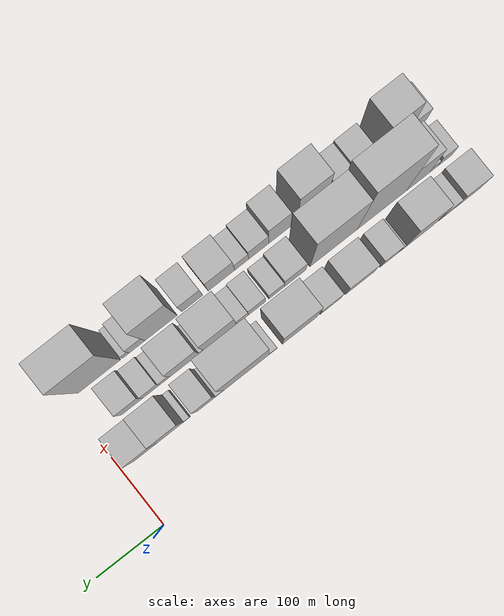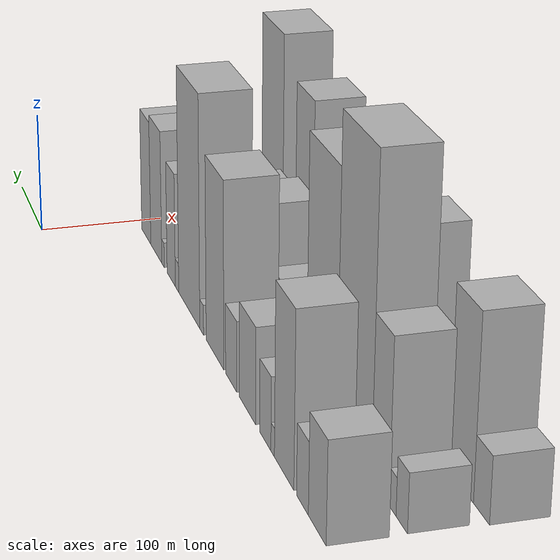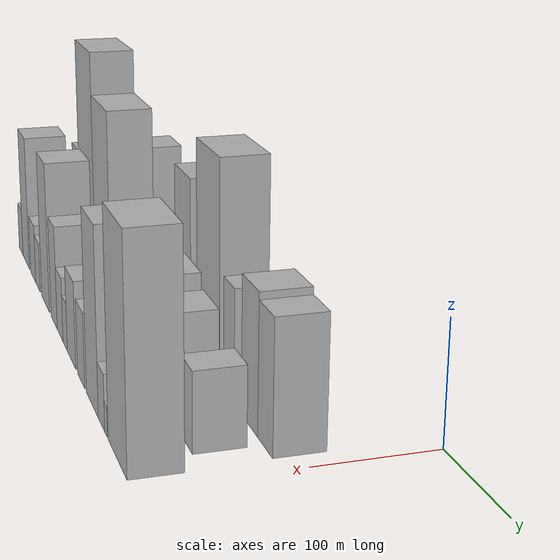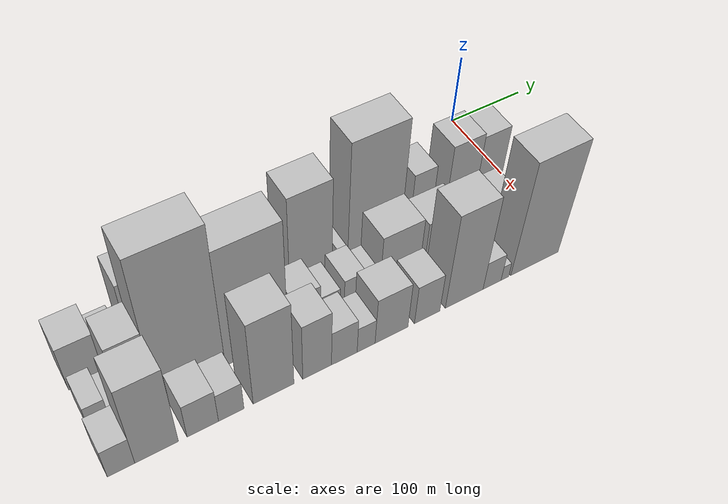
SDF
<sdf version="1.6">
 <world name="default">
  <model name="building_1">
   <static>1</static>
   <pose>100.0000 -521.2292 0 0.000000 0.000000 0.000000</pose>
   <link name="link">
    <pose>0 0 36.00 0 0 0</pose>
    <collision name="collision"><geometry><box><size>40.0000 37.5416 72.0000</size></box></geometry></collision>
    <visual name="visual">
     <cast_shadows>0</cast_shadows>
     <geometry><box><size>40.0000 37.5416 72.0000</size></box></geometry>
     <material>
      <script>
       <uri>model://HANNAS_wall/materials/scripts</uri>
       <uri>model://HANNAS_wall/materials/textures</uri>
       <name>vrc/HANNAS_wall</name>
      </script>
     </material>
    </visual>
   </link>
  </model>
  <model name="building_2">
   <static>1</static>
   <pose>100.0000 -489.3952 0 0.000000 0.000000 0.000000</pose>
   <link name="link">
    <pose>0 0 25.50 0 0 0</pose>
    <collision name="collision"><geometry><box><size>40.0000 26.1263 51.0000</size></box></geometry></collision>
    <visual name="visual">
     <cast_shadows>0</cast_shadows>
     <geometry><box><size>40.0000 26.1263 51.0000</size></box></geometry>
     <material>
      <script>
       <uri>model://HANNAS_wall/materials/scripts</uri>
       <uri>model://HANNAS_wall/materials/textures</uri>
       <name>vrc/HANNAS_wall</name>
      </script>
     </material>
    </visual>
   </link>
  </model>
  <model name="building_3">
   <static>1</static>
   <pose>100.0000 -447.6443 0 0.000000 0.000000 0.000000</pose>
   <link name="link">
    <pose>0 0 63.00 0 0 0</pose>
    <collision name="collision"><geometry><box><size>40.0000 45.3757 126.0000</size></box></geometry></collision>
    <visual name="visual">
     <cast_shadows>0</cast_shadows>
     <geometry><box><size>40.0000 45.3757 126.0000</size></box></geometry>
     <material>
      <script>
       <uri>model://HANNAS_wall/materials/scripts</uri>
       <uri>model://HANNAS_wall/materials/textures</uri>
       <name>vrc/HANNAS_wall</name>
      </script>
     </material>
    </visual>
   </link>
  </model>
  <model name="building_4">
   <static>1</static>
   <pose>100.0000 -420.6477 0 0.000000 0.000000 0.000000</pose>
   <link name="link">
    <pose>0 0 10.50 0 0 0</pose>
    <collision name="collision"><geometry><box><size>40.0000 8.6174 21.0000</size></box></geometry></collision>
    <visual name="visual">
     <cast_shadows>0</cast_shadows>
     <geometry><box><size>40.0000 8.6174 21.0000</size></box></geometry>
     <material>
      <script>
       <uri>model://HANNAS_wall/materials/scripts</uri>
       <uri>model://HANNAS_wall/materials/textures</uri>
       <name>vrc/HANNAS_wall</name>
      </script>
     </material>
    </visual>
   </link>
  </model>
  <model name="building_5">
   <static>1</static>
   <pose>100.0000 -402.2791 0 0.000000 0.000000 0.000000</pose>
   <link name="link">
    <pose>0 0 27.00 0 0 0</pose>
    <collision name="collision"><geometry><box><size>40.0000 28.1198 54.0000</size></box></geometry></collision>
    <visual name="visual">
     <cast_shadows>0</cast_shadows>
     <geometry><box><size>40.0000 28.1198 54.0000</size></box></geometry>
     <material>
      <script>
       <uri>model://HANNAS_wall/materials/scripts</uri>
       <uri>model://HANNAS_wall/materials/textures</uri>
       <name>vrc/HANNAS_wall</name>
      </script>
     </material>
    </visual>
   </link>
  </model>
  <model name="building_6">
   <static>1</static>
   <pose>100.0000 -356.8882 0 0.000000 0.000000 0.000000</pose>
   <link name="link">
    <pose>0 0 36.00 0 0 0</pose>
    <collision name="collision"><geometry><box><size>40.0000 42.6621 72.0000</size></box></geometry></collision>
    <visual name="visual">
     <cast_shadows>0</cast_shadows>
     <geometry><box><size>40.0000 42.6621 72.0000</size></box></geometry>
     <material>
      <script>
       <uri>model://HANNAS_wall/materials/scripts</uri>
       <uri>model://HANNAS_wall/materials/textures</uri>
       <name>vrc/HANNAS_wall</name>
      </script>
     </material>
    </visual>
   </link>
  </model>
  <model name="building_7">
   <static>1</static>
   <pose>100.0000 -312.8669 0 0.000000 0.000000 0.000000</pose>
   <link name="link">
    <pose>0 0 27.00 0 0 0</pose>
    <collision name="collision"><geometry><box><size>40.0000 31.3804 54.0000</size></box></geometry></collision>
    <visual name="visual">
     <cast_shadows>0</cast_shadows>
     <geometry><box><size>40.0000 31.3804 54.0000</size></box></geometry>
     <material>
      <script>
       <uri>model://HANNAS_wall/materials/scripts</uri>
       <uri>model://HANNAS_wall/materials/textures</uri>
       <name>vrc/HANNAS_wall</name>
      </script>
     </material>
    </visual>
   </link>
  </model>
  <model name="building_8">
   <static>1</static>
   <pose>100.0000 -266.2269 0 0.000000 0.000000 0.000000</pose>
   <link name="link">
    <pose>0 0 72.00 0 0 0</pose>
    <collision name="collision"><geometry><box><size>40.0000 51.8997 144.0000</size></box></geometry></collision>
    <visual name="visual">
     <cast_shadows>0</cast_shadows>
     <geometry><box><size>40.0000 51.8997 144.0000</size></box></geometry>
     <material>
      <script>
       <uri>model://HANNAS_wall/materials/scripts</uri>
       <uri>model://HANNAS_wall/materials/textures</uri>
       <name>vrc/HANNAS_wall</name>
      </script>
     </material>
    </visual>
   </link>
  </model>
  <model name="building_9">
   <static>1</static>
   <pose>100.0000 -226.4892 0 0.000000 0.000000 0.000000</pose>
   <link name="link">
    <pose>0 0 12.00 0 0 0</pose>
    <collision name="collision"><geometry><box><size>40.0000 11.5759 24.0000</size></box></geometry></collision>
    <visual name="visual">
     <cast_shadows>0</cast_shadows>
     <geometry><box><size>40.0000 11.5759 24.0000</size></box></geometry>
     <material>
      <script>
       <uri>model://HANNAS_wall/materials/scripts</uri>
       <uri>model://HANNAS_wall/materials/textures</uri>
       <name>vrc/HANNAS_wall</name>
      </script>
     </material>
    </visual>
   </link>
  </model>
  <model name="building_10">
   <static>1</static>
   <pose>100.0000 -186.7829 0 0.000000 0.000000 0.000000</pose>
   <link name="link">
    <pose>0 0 91.50 0 0 0</pose>
    <collision name="collision"><geometry><box><size>40.0000 67.8367 183.0000</size></box></geometry></collision>
    <visual name="visual">
     <cast_shadows>0</cast_shadows>
     <geometry><box><size>40.0000 67.8367 183.0000</size></box></geometry>
     <material>
      <script>
       <uri>model://HANNAS_wall/materials/scripts</uri>
       <uri>model://HANNAS_wall/materials/textures</uri>
       <name>vrc/HANNAS_wall</name>
      </script>
     </material>
    </visual>
   </link>
  </model>
  <model name="building_11">
   <static>1</static>
   <pose>100.0000 -147.0501 0 0.000000 0.000000 0.000000</pose>
   <link name="link">
    <pose>0 0 12.00 0 0 0</pose>
    <collision name="collision"><geometry><box><size>40.0000 11.6288 24.0000</size></box></geometry></collision>
    <visual name="visual">
     <cast_shadows>0</cast_shadows>
     <geometry><box><size>40.0000 11.6288 24.0000</size></box></geometry>
     <material>
      <script>
       <uri>model://HANNAS_wall/materials/scripts</uri>
       <uri>model://HANNAS_wall/materials/textures</uri>
       <name>vrc/HANNAS_wall</name>
      </script>
     </material>
    </visual>
   </link>
  </model>
  <model name="building_12">
   <static>1</static>
   <pose>100.0000 -126.9637 0 0.000000 0.000000 0.000000</pose>
   <link name="link">
    <pose>0 0 46.50 0 0 0</pose>
    <collision name="collision"><geometry><box><size>40.0000 28.5441 93.0000</size></box></geometry></collision>
    <visual name="visual">
     <cast_shadows>0</cast_shadows>
     <geometry><box><size>40.0000 28.5441 93.0000</size></box></geometry>
     <material>
      <script>
       <uri>model://HANNAS_wall/materials/scripts</uri>
       <uri>model://HANNAS_wall/materials/textures</uri>
       <name>vrc/HANNAS_wall</name>
      </script>
     </material>
    </visual>
   </link>
  </model>
  <model name="building_13">
   <static>1</static>
   <pose>100.0000 -98.3616 0 0.000000 0.000000 0.000000</pose>
   <link name="link">
    <pose>0 0 10.50 0 0 0</pose>
    <collision name="collision"><geometry><box><size>40.0000 8.6600 21.0000</size></box></geometry></collision>
    <visual name="visual">
     <cast_shadows>0</cast_shadows>
     <geometry><box><size>40.0000 8.6600 21.0000</size></box></geometry>
     <material>
      <script>
       <uri>model://HANNAS_wall/materials/scripts</uri>
       <uri>model://HANNAS_wall/materials/textures</uri>
       <name>vrc/HANNAS_wall</name>
      </script>
     </material>
    </visual>
   </link>
  </model>
  <model name="building_14">
   <static>1</static>
   <pose>100.0000 -73.8813 0 0.000000 0.000000 0.000000</pose>
   <link name="link">
    <pose>0 0 55.50 0 0 0</pose>
    <collision name="collision"><geometry><box><size>40.0000 40.3006 111.0000</size></box></geometry></collision>
    <visual name="visual">
     <cast_shadows>0</cast_shadows>
     <geometry><box><size>40.0000 40.3006 111.0000</size></box></geometry>
     <material>
      <script>
       <uri>model://HANNAS_wall/materials/scripts</uri>
       <uri>model://HANNAS_wall/materials/textures</uri>
       <name>vrc/HANNAS_wall</name>
      </script>
     </material>
    </visual>
   </link>
  </model>
  <model name="building_15">
   <static>1</static>
   <pose>100.0000 -36.5058 0 0.000000 0.000000 0.000000</pose>
   <link name="link">
    <pose>0 0 52.50 0 0 0</pose>
    <collision name="collision"><geometry><box><size>40.0000 34.4504 105.0000</size></box></geometry></collision>
    <visual name="visual">
     <cast_shadows>0</cast_shadows>
     <geometry><box><size>40.0000 34.4504 105.0000</size></box></geometry>
     <material>
      <script>
       <uri>model://HANNAS_wall/materials/scripts</uri>
       <uri>model://HANNAS_wall/materials/textures</uri>
       <name>vrc/HANNAS_wall</name>
      </script>
     </material>
    </visual>
   </link>
  </model>
  <model name="building_31">
   <static>1</static>
   <pose>152.0000 -528.1778 0 0.000000 0.000000 0.000000</pose>
   <link name="link">
    <pose>0 0 21.00 0 0 0</pose>
    <collision name="collision"><geometry><box><size>40.0000 21.6443 42.0000</size></box></geometry></collision>
    <visual name="visual">
     <cast_shadows>0</cast_shadows>
     <geometry><box><size>40.0000 21.6443 42.0000</size></box></geometry>
     <material>
      <script>
       <uri>model://HANNAS_wall/materials/scripts</uri>
       <uri>model://HANNAS_wall/materials/textures</uri>
       <name>vrc/HANNAS_wall</name>
      </script>
     </material>
    </visual>
   </link>
  </model>
  <model name="building_32">
   <static>1</static>
   <pose>152.0000 -510.8541 0 0.000000 0.000000 0.000000</pose>
   <link name="link">
    <pose>0 0 13.50 0 0 0</pose>
    <collision name="collision"><geometry><box><size>40.0000 13.0031 27.0000</size></box></geometry></collision>
    <visual name="visual">
     <cast_shadows>0</cast_shadows>
     <geometry><box><size>40.0000 13.0031 27.0000</size></box></geometry>
     <material>
      <script>
       <uri>model://HANNAS_wall/materials/scripts</uri>
       <uri>model://HANNAS_wall/materials/textures</uri>
       <name>vrc/HANNAS_wall</name>
      </script>
     </material>
    </visual>
   </link>
  </model>
  <model name="building_33">
   <static>1</static>
   <pose>152.0000 -486.6505 0 0.000000 0.000000 0.000000</pose>
   <link name="link">
    <pose>0 0 58.50 0 0 0</pose>
    <collision name="collision"><geometry><box><size>40.0000 35.4040 117.0000</size></box></geometry></collision>
    <visual name="visual">
     <cast_shadows>0</cast_shadows>
     <geometry><box><size>40.0000 35.4040 117.0000</size></box></geometry>
     <material>
      <script>
       <uri>model://HANNAS_wall/materials/scripts</uri>
       <uri>model://HANNAS_wall/materials/textures</uri>
       <name>vrc/HANNAS_wall</name>
      </script>
     </material>
    </visual>
   </link>
  </model>
  <model name="building_34">
   <static>1</static>
   <pose>152.0000 -431.5255 0 0.000000 0.000000 0.000000</pose>
   <link name="link">
    <pose>0 0 112.50 0 0 0</pose>
    <collision name="collision"><geometry><box><size>40.0000 74.8459 225.0000</size></box></geometry></collision>
    <visual name="visual">
     <cast_shadows>0</cast_shadows>
     <geometry><box><size>40.0000 74.8459 225.0000</size></box></geometry>
     <material>
      <script>
       <uri>model://HANNAS_wall/materials/scripts</uri>
       <uri>model://HANNAS_wall/materials/textures</uri>
       <name>vrc/HANNAS_wall</name>
      </script>
     </material>
    </visual>
   </link>
  </model>
  <model name="building_35">
   <static>1</static>
   <pose>152.0000 -358.5160 0 0.000000 0.000000 0.000000</pose>
   <link name="link">
    <pose>0 0 93.00 0 0 0</pose>
    <collision name="collision"><geometry><box><size>40.0000 71.1732 186.0000</size></box></geometry></collision>
    <visual name="visual">
     <cast_shadows>0</cast_shadows>
     <geometry><box><size>40.0000 71.1732 186.0000</size></box></geometry>
     <material>
      <script>
       <uri>model://HANNAS_wall/materials/scripts</uri>
       <uri>model://HANNAS_wall/materials/textures</uri>
       <name>vrc/HANNAS_wall</name>
      </script>
     </material>
    </visual>
   </link>
  </model>
  <model name="building_36">
   <static>1</static>
   <pose>152.0000 -300.5440 0 0.000000 0.000000 0.000000</pose>
   <link name="link">
    <pose>0 0 30.00 0 0 0</pose>
    <collision name="collision"><geometry><box><size>40.0000 32.7709 60.0000</size></box></geometry></collision>
    <visual name="visual">
     <cast_shadows>0</cast_shadows>
     <geometry><box><size>40.0000 32.7709 60.0000</size></box></geometry>
     <material>
      <script>
       <uri>model://HANNAS_wall/materials/scripts</uri>
       <uri>model://HANNAS_wall/materials/textures</uri>
       <name>vrc/HANNAS_wall</name>
      </script>
     </material>
    </visual>
   </link>
  </model>
  <model name="building_37">
   <static>1</static>
   <pose>152.0000 -272.6185 0 0.000000 0.000000 0.000000</pose>
   <link name="link">
    <pose>0 0 19.50 0 0 0</pose>
    <collision name="collision"><geometry><box><size>40.0000 23.0800 39.0000</size></box></geometry></collision>
    <visual name="visual">
     <cast_shadows>0</cast_shadows>
     <geometry><box><size>40.0000 23.0800 39.0000</size></box></geometry>
     <material>
      <script>
       <uri>model://HANNAS_wall/materials/scripts</uri>
       <uri>model://HANNAS_wall/materials/textures</uri>
       <name>vrc/HANNAS_wall</name>
      </script>
     </material>
    </visual>
   </link>
  </model>
  <model name="building_38">
   <static>1</static>
   <pose>152.0000 -243.2414 0 0.000000 0.000000 0.000000</pose>
   <link name="link">
    <pose>0 0 24.00 0 0 0</pose>
    <collision name="collision"><geometry><box><size>40.0000 25.6743 48.0000</size></box></geometry></collision>
    <visual name="visual">
     <cast_shadows>0</cast_shadows>
     <geometry><box><size>40.0000 25.6743 48.0000</size></box></geometry>
     <material>
      <script>
       <uri>model://HANNAS_wall/materials/scripts</uri>
       <uri>model://HANNAS_wall/materials/textures</uri>
       <name>vrc/HANNAS_wall</name>
      </script>
     </material>
    </visual>
   </link>
  </model>
  <model name="building_39">
   <static>1</static>
   <pose>152.0000 -221.3581 0 0.000000 0.000000 0.000000</pose>
   <link name="link">
    <pose>0 0 18.00 0 0 0</pose>
    <collision name="collision"><geometry><box><size>40.0000 18.0922 36.0000</size></box></geometry></collision>
    <visual name="visual">
     <cast_shadows>0</cast_shadows>
     <geometry><box><size>40.0000 18.0922 36.0000</size></box></geometry>
     <material>
      <script>
       <uri>model://HANNAS_wall/materials/scripts</uri>
       <uri>model://HANNAS_wall/materials/textures</uri>
       <name>vrc/HANNAS_wall</name>
      </script>
     </material>
    </visual>
   </link>
  </model>
  <model name="building_40">
   <static>1</static>
   <pose>152.0000 -187.5275 0 0.000000 0.000000 0.000000</pose>
   <link name="link">
    <pose>0 0 45.00 0 0 0</pose>
    <collision name="collision"><geometry><box><size>40.0000 49.5690 90.0000</size></box></geometry></collision>
    <visual name="visual">
     <cast_shadows>0</cast_shadows>
     <geometry><box><size>40.0000 49.5690 90.0000</size></box></geometry>
     <material>
      <script>
       <uri>model://HANNAS_wall/materials/scripts</uri>
       <uri>model://HANNAS_wall/materials/textures</uri>
       <name>vrc/HANNAS_wall</name>
      </script>
     </material>
    </visual>
   </link>
  </model>
  <model name="building_41">
   <static>1</static>
   <pose>152.0000 -159.6810 0 0.000000 0.000000 0.000000</pose>
   <link name="link">
    <pose>0 0 7.50 0 0 0</pose>
    <collision name="collision"><geometry><box><size>40.0000 6.1241 15.0000</size></box></geometry></collision>
    <visual name="visual">
     <cast_shadows>0</cast_shadows>
     <geometry><box><size>40.0000 6.1241 15.0000</size></box></geometry>
     <material>
      <script>
       <uri>model://HANNAS_wall/materials/scripts</uri>
       <uri>model://HANNAS_wall/materials/textures</uri>
       <name>vrc/HANNAS_wall</name>
      </script>
     </material>
    </visual>
   </link>
  </model>
  <model name="building_42">
   <static>1</static>
   <pose>152.0000 -134.6582 0 0.000000 0.000000 0.000000</pose>
   <link name="link">
    <pose>0 0 39.00 0 0 0</pose>
    <collision name="collision"><geometry><box><size>40.0000 43.9215 78.0000</size></box></geometry></collision>
    <visual name="visual">
     <cast_shadows>0</cast_shadows>
     <geometry><box><size>40.0000 43.9215 78.0000</size></box></geometry>
     <material>
      <script>
       <uri>model://HANNAS_wall/materials/scripts</uri>
       <uri>model://HANNAS_wall/materials/textures</uri>
       <name>vrc/HANNAS_wall</name>
      </script>
     </material>
    </visual>
   </link>
  </model>
  <model name="building_43">
   <static>1</static>
   <pose>152.0000 -105.0419 0 0.000000 0.000000 0.000000</pose>
   <link name="link">
    <pose>0 0 15.00 0 0 0</pose>
    <collision name="collision"><geometry><box><size>40.0000 15.3110 30.0000</size></box></geometry></collision>
    <visual name="visual">
     <cast_shadows>0</cast_shadows>
     <geometry><box><size>40.0000 15.3110 30.0000</size></box></geometry>
     <material>
      <script>
       <uri>model://HANNAS_wall/materials/scripts</uri>
       <uri>model://HANNAS_wall/materials/textures</uri>
       <name>vrc/HANNAS_wall</name>
      </script>
     </material>
    </visual>
   </link>
  </model>
  <model name="building_44">
   <static>1</static>
   <pose>152.0000 -84.9312 0 0.000000 0.000000 0.000000</pose>
   <link name="link">
    <pose>0 0 21.00 0 0 0</pose>
    <collision name="collision"><geometry><box><size>40.0000 24.9103 42.0000</size></box></geometry></collision>
    <visual name="visual">
     <cast_shadows>0</cast_shadows>
     <geometry><box><size>40.0000 24.9103 42.0000</size></box></geometry>
     <material>
      <script>
       <uri>model://HANNAS_wall/materials/scripts</uri>
       <uri>model://HANNAS_wall/materials/textures</uri>
       <name>vrc/HANNAS_wall</name>
      </script>
     </material>
    </visual>
   </link>
  </model>
  <model name="building_45">
   <static>1</static>
   <pose>152.0000 -56.4137 0 0.000000 0.000000 0.000000</pose>
   <link name="link">
    <pose>0 0 31.50 0 0 0</pose>
    <collision name="collision"><geometry><box><size>40.0000 32.1248 63.0000</size></box></geometry></collision>
    <visual name="visual">
     <cast_shadows>0</cast_shadows>
     <geometry><box><size>40.0000 32.1248 63.0000</size></box></geometry>
     <material>
      <script>
       <uri>model://HANNAS_wall/materials/scripts</uri>
       <uri>model://HANNAS_wall/materials/textures</uri>
       <name>vrc/HANNAS_wall</name>
      </script>
     </material>
    </visual>
   </link>
  </model>
  <model name="building_59">
   <static>1</static>
   <pose>204.0000 -528.1693 0 0.000000 0.000000 0.000000</pose>
   <link name="link">
    <pose>0 0 24.00 0 0 0</pose>
    <collision name="collision"><geometry><box><size>40.0000 27.6614 48.0000</size></box></geometry></collision>
    <visual name="visual">
     <cast_shadows>0</cast_shadows>
     <geometry><box><size>40.0000 27.6614 48.0000</size></box></geometry>
     <material>
      <script>
       <uri>model://HANNAS_wall/materials/scripts</uri>
       <uri>model://HANNAS_wall/materials/textures</uri>
       <name>vrc/HANNAS_wall</name>
      </script>
     </material>
    </visual>
   </link>
  </model>
  <model name="building_60">
   <static>1</static>
   <pose>204.0000 -492.0183 0 0.000000 0.000000 0.000000</pose>
   <link name="link">
    <pose>0 0 66.00 0 0 0</pose>
    <collision name="collision"><geometry><box><size>40.0000 44.6406 132.0000</size></box></geometry></collision>
    <visual name="visual">
     <cast_shadows>0</cast_shadows>
     <geometry><box><size>40.0000 44.6406 132.0000</size></box></geometry>
     <material>
      <script>
       <uri>model://HANNAS_wall/materials/scripts</uri>
       <uri>model://HANNAS_wall/materials/textures</uri>
       <name>vrc/HANNAS_wall</name>
      </script>
     </material>
    </visual>
   </link>
  </model>
  <model name="building_61">
   <static>1</static>
   <pose>204.0000 -444.0405 0 0.000000 0.000000 0.000000</pose>
   <link name="link">
    <pose>0 0 28.50 0 0 0</pose>
    <collision name="collision"><geometry><box><size>40.0000 33.3150 57.0000</size></box></geometry></collision>
    <visual name="visual">
     <cast_shadows>0</cast_shadows>
     <geometry><box><size>40.0000 33.3150 57.0000</size></box></geometry>
     <material>
      <script>
       <uri>model://HANNAS_wall/materials/scripts</uri>
       <uri>model://HANNAS_wall/materials/textures</uri>
       <name>vrc/HANNAS_wall</name>
      </script>
     </material>
    </visual>
   </link>
  </model>
  <model name="building_62">
   <static>1</static>
   <pose>204.0000 -413.6468 0 0.000000 0.000000 0.000000</pose>
   <link name="link">
    <pose>0 0 24.00 0 0 0</pose>
    <collision name="collision"><geometry><box><size>40.0000 27.4723 48.0000</size></box></geometry></collision>
    <visual name="visual">
     <cast_shadows>0</cast_shadows>
     <geometry><box><size>40.0000 27.4723 48.0000</size></box></geometry>
     <material>
      <script>
       <uri>model://HANNAS_wall/materials/scripts</uri>
       <uri>model://HANNAS_wall/materials/textures</uri>
       <name>vrc/HANNAS_wall</name>
      </script>
     </material>
    </visual>
   </link>
  </model>
  <model name="building_63">
   <static>1</static>
   <pose>204.0000 -367.2348 0 0.000000 0.000000 0.000000</pose>
   <link name="link">
    <pose>0 0 69.00 0 0 0</pose>
    <collision name="collision"><geometry><box><size>40.0000 45.3516 138.0000</size></box></geometry></collision>
    <visual name="visual">
     <cast_shadows>0</cast_shadows>
     <geometry><box><size>40.0000 45.3516 138.0000</size></box></geometry>
     <material>
      <script>
       <uri>model://HANNAS_wall/materials/scripts</uri>
       <uri>model://HANNAS_wall/materials/textures</uri>
       <name>vrc/HANNAS_wall</name>
      </script>
     </material>
    </visual>
   </link>
  </model>
  <model name="building_64">
   <static>1</static>
   <pose>204.0000 -318.1275 0 0.000000 0.000000 0.000000</pose>
   <link name="link">
    <pose>0 0 46.50 0 0 0</pose>
    <collision name="collision"><geometry><box><size>40.0000 32.8631 93.0000</size></box></geometry></collision>
    <visual name="visual">
     <cast_shadows>0</cast_shadows>
     <geometry><box><size>40.0000 32.8631 93.0000</size></box></geometry>
     <material>
      <script>
       <uri>model://HANNAS_wall/materials/scripts</uri>
       <uri>model://HANNAS_wall/materials/textures</uri>
       <name>vrc/HANNAS_wall</name>
      </script>
     </material>
    </visual>
   </link>
  </model>
  <model name="building_65">
   <static>1</static>
   <pose>204.0000 -286.6837 0 0.000000 0.000000 0.000000</pose>
   <link name="link">
    <pose>0 0 28.50 0 0 0</pose>
    <collision name="collision"><geometry><box><size>40.0000 30.0245 57.0000</size></box></geometry></collision>
    <visual name="visual">
     <cast_shadows>0</cast_shadows>
     <geometry><box><size>40.0000 30.0245 57.0000</size></box></geometry>
     <material>
      <script>
       <uri>model://HANNAS_wall/materials/scripts</uri>
       <uri>model://HANNAS_wall/materials/textures</uri>
       <name>vrc/HANNAS_wall</name>
      </script>
     </material>
    </visual>
   </link>
  </model>
  <model name="building_66">
   <static>1</static>
   <pose>204.0000 -261.0341 0 0.000000 0.000000 0.000000</pose>
   <link name="link">
    <pose>0 0 21.00 0 0 0</pose>
    <collision name="collision"><geometry><box><size>40.0000 21.2747 42.0000</size></box></geometry></collision>
    <visual name="visual">
     <cast_shadows>0</cast_shadows>
     <geometry><box><size>40.0000 21.2747 42.0000</size></box></geometry>
     <material>
      <script>
       <uri>model://HANNAS_wall/materials/scripts</uri>
       <uri>model://HANNAS_wall/materials/textures</uri>
       <name>vrc/HANNAS_wall</name>
      </script>
     </material>
    </visual>
   </link>
  </model>
  <model name="building_67">
   <static>1</static>
   <pose>204.0000 -230.4503 0 0.000000 0.000000 0.000000</pose>
   <link name="link">
    <pose>0 0 37.50 0 0 0</pose>
    <collision name="collision"><geometry><box><size>40.0000 39.8929 75.0000</size></box></geometry></collision>
    <visual name="visual">
     <cast_shadows>0</cast_shadows>
     <geometry><box><size>40.0000 39.8929 75.0000</size></box></geometry>
     <material>
      <script>
       <uri>model://HANNAS_wall/materials/scripts</uri>
       <uri>model://HANNAS_wall/materials/textures</uri>
       <name>vrc/HANNAS_wall</name>
      </script>
     </material>
    </visual>
   </link>
  </model>
  <model name="building_68">
   <static>1</static>
   <pose>204.0000 -186.7470 0 0.000000 0.000000 0.000000</pose>
   <link name="link">
    <pose>0 0 31.50 0 0 0</pose>
    <collision name="collision"><geometry><box><size>40.0000 31.5137 63.0000</size></box></geometry></collision>
    <visual name="visual">
     <cast_shadows>0</cast_shadows>
     <geometry><box><size>40.0000 31.5137 63.0000</size></box></geometry>
     <material>
      <script>
       <uri>model://HANNAS_wall/materials/scripts</uri>
       <uri>model://HANNAS_wall/materials/textures</uri>
       <name>vrc/HANNAS_wall</name>
      </script>
     </material>
    </visual>
   </link>
  </model>
  <model name="building_69">
   <static>1</static>
   <pose>204.0000 -139.8724 0 0.000000 0.000000 0.000000</pose>
   <link name="link">
    <pose>0 0 75.00 0 0 0</pose>
    <collision name="collision"><geometry><box><size>40.0000 48.2354 150.0000</size></box></geometry></collision>
    <visual name="visual">
     <cast_shadows>0</cast_shadows>
     <geometry><box><size>40.0000 48.2354 150.0000</size></box></geometry>
     <material>
      <script>
       <uri>model://HANNAS_wall/materials/scripts</uri>
       <uri>model://HANNAS_wall/materials/textures</uri>
       <name>vrc/HANNAS_wall</name>
      </script>
     </material>
    </visual>
   </link>
  </model>
  <model name="building_70">
   <static>1</static>
   <pose>204.0000 -103.9542 0 0.000000 0.000000 0.000000</pose>
   <link name="link">
    <pose>0 0 22.50 0 0 0</pose>
    <collision name="collision"><geometry><box><size>40.0000 23.6009 45.0000</size></box></geometry></collision>
    <visual name="visual">
     <cast_shadows>0</cast_shadows>
     <geometry><box><size>40.0000 23.6009 45.0000</size></box></geometry>
     <material>
      <script>
       <uri>model://HANNAS_wall/materials/scripts</uri>
       <uri>model://HANNAS_wall/materials/textures</uri>
       <name>vrc/HANNAS_wall</name>
      </script>
     </material>
    </visual>
   </link>
  </model>
  <model name="building_71">
   <static>1</static>
   <pose>204.0000 -87.2025 0 0.000000 0.000000 0.000000</pose>
   <link name="link">
    <pose>0 0 12.00 0 0 0</pose>
    <collision name="collision"><geometry><box><size>40.0000 9.9026 24.0000</size></box></geometry></collision>
    <visual name="visual">
     <cast_shadows>0</cast_shadows>
     <geometry><box><size>40.0000 9.9026 24.0000</size></box></geometry>
     <material>
      <script>
       <uri>model://HANNAS_wall/materials/scripts</uri>
       <uri>model://HANNAS_wall/materials/textures</uri>
       <name>vrc/HANNAS_wall</name>
      </script>
     </material>
    </visual>
   </link>
  </model>
  <model name="building_72">
   <static>1</static>
   <pose>204.0000 -47.4137 0 0.000000 0.000000 0.000000</pose>
   <link name="link">
    <pose>0 0 88.50 0 0 0</pose>
    <collision name="collision"><geometry><box><size>40.0000 63.6751 177.0000</size></box></geometry></collision>
    <visual name="visual">
     <cast_shadows>0</cast_shadows>
     <geometry><box><size>40.0000 63.6751 177.0000</size></box></geometry>
     <material>
      <script>
       <uri>model://HANNAS_wall/materials/scripts</uri>
       <uri>model://HANNAS_wall/materials/textures</uri>
       <name>vrc/HANNAS_wall</name>
      </script>
     </material>
    </visual>
   </link>
  </model>
 </world>
</sdf>
